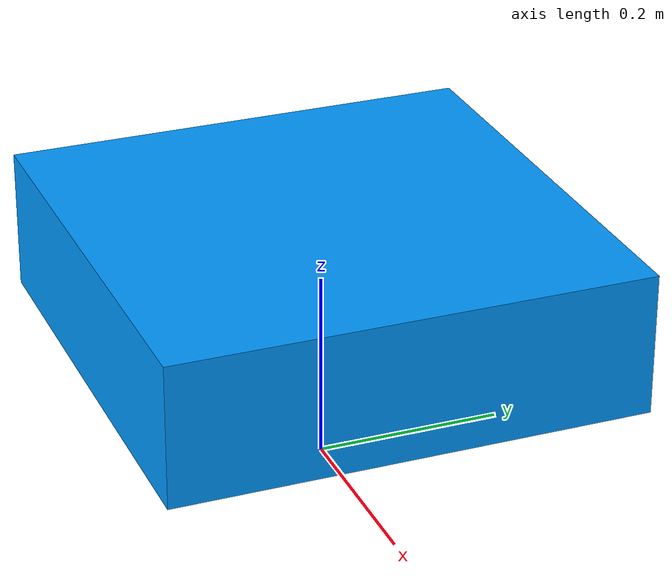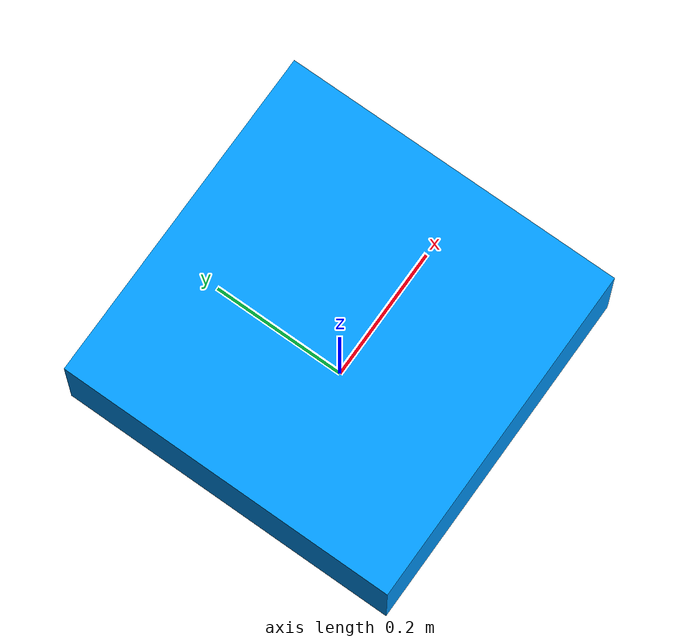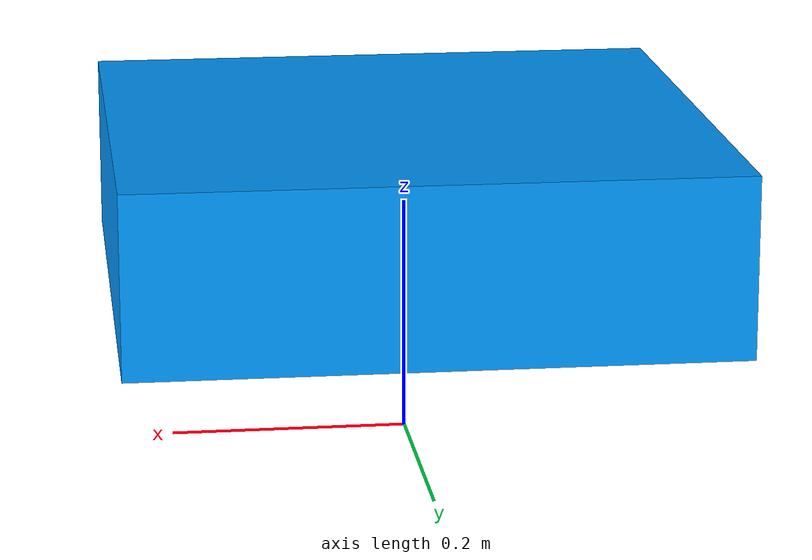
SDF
<?xml version="1.0"?>
<sdf version="1.6">
  <model name="uav_dummy">
    <static>false</static>
    <link name="base_link">
      <kinematic>true</kinematic>
      <gravity>false</gravity>

      <pose>0 0 0.2 0 0 0</pose>

      <inertial>
        <mass>1.0</mass>
        <inertia>
          <ixx>0.01</ixx><iyy>0.01</iyy><izz>0.02</izz>
        </inertia>
      </inertial>

      <collision name="collision">
        <geometry>
          <box><size>0.5 0.5 0.15</size></box>
        </geometry>
      </collision>

      <visual name="visual">
        <geometry>
          <box><size>0.5 0.5 0.15</size></box>
        </geometry>
        <material>
          <ambient>0 0.6 1 1</ambient>
          <diffuse>0 0.6 1 1</diffuse>
        </material>
      </visual>
    </link>
  </model>
</sdf>
